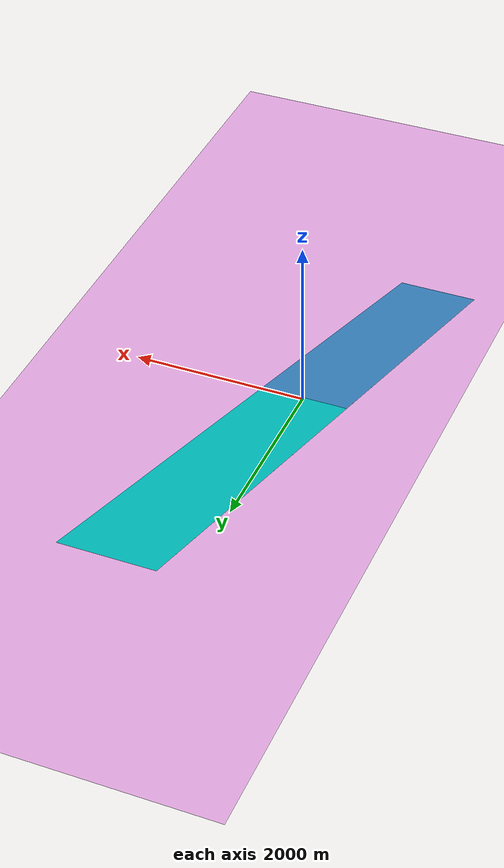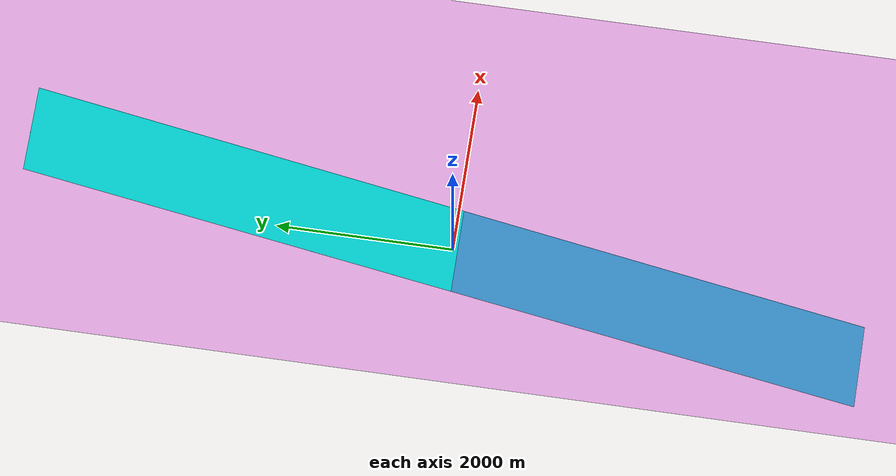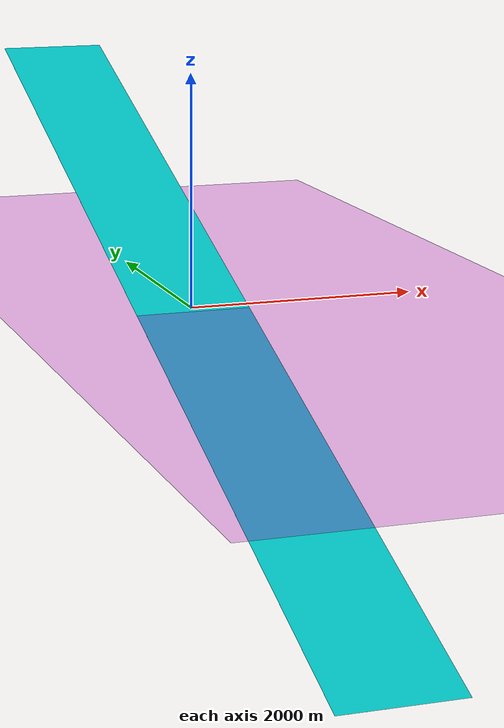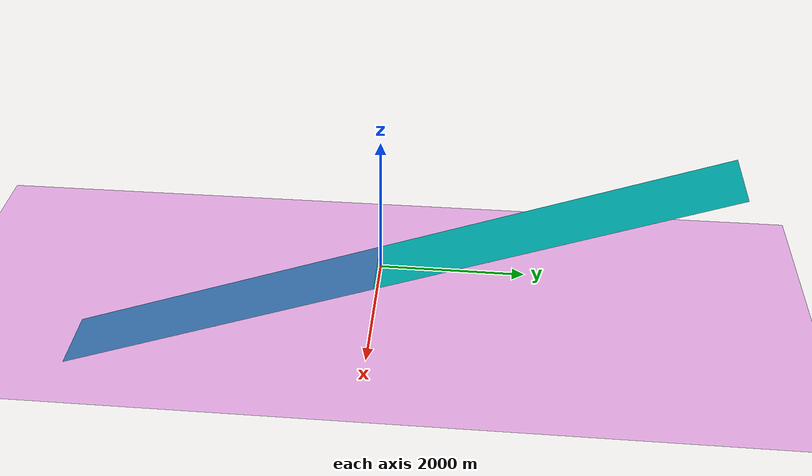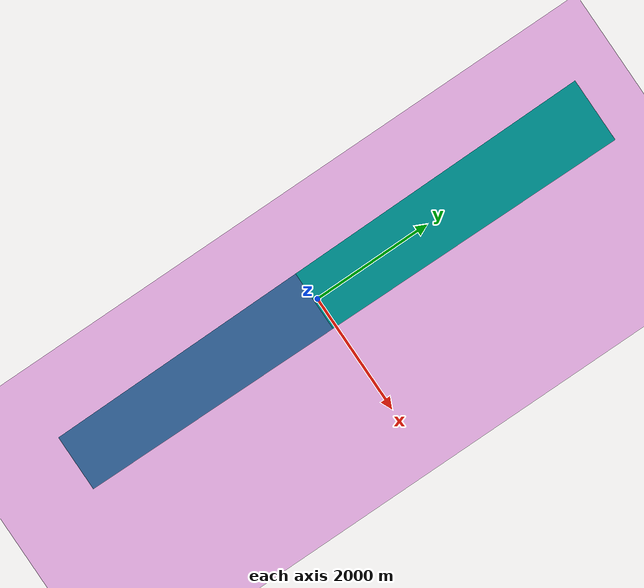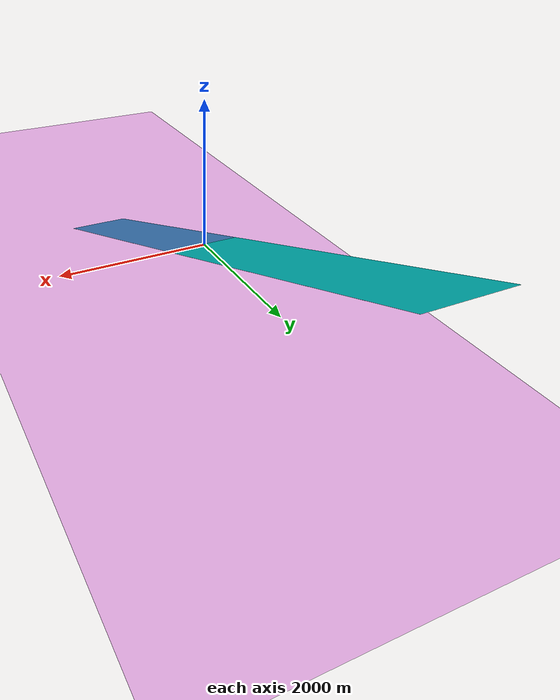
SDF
<?xml version="1.0" ?>
<sdf version="1.6">
  <world name="shapes">
    <physics name="1ms" type="ignored">
      <max_step_size>0.001</max_step_size>
      <real_time_factor>1.0</real_time_factor>
    </physics>
    <plugin
      filename="ignition-gazebo-physics-system"
      name="ignition::gazebo::systems::Physics">
    </plugin>
    <plugin
      filename="ignition-gazebo-user-commands-system"
      name="ignition::gazebo::systems::UserCommands">
    </plugin>
    <plugin
      filename="ignition-gazebo-scene-broadcaster-system"
      name="ignition::gazebo::systems::SceneBroadcaster">
    </plugin>

    <scene>
      <ambient>1.0 1.0 1.0</ambient>
      <background>0.8 0.8 0.8</background>
    </scene>

    <light type="directional" name="sun">
      <cast_shadows>true</cast_shadows>
      <pose>0 0 10 0 0 0</pose>
      <diffuse>0.8 0.8 0.8 1</diffuse>
      <specular>0.8 0.8 0.8 1</specular>
      <attenuation>
        <range>1000</range>
        <constant>0.9</constant>
        <linear>0.01</linear>
        <quadratic>0.001</quadratic>
      </attenuation>
      <direction>-0.5 0.1 -0.9</direction>
    </light>

    <model name="tilted_box_fixed">
      <pose>0 0 0 0.35 0 0</pose>
      <static>true</static>
      <link name="tilted_box_link">
        <collision name="collision">
	  <geometry>
            <box>
              <size>1000 1000 0.1</size>
            </box>
          </geometry>
        </collision>
        <visual name="visual">
	  <geometry>
            <box>
              <size>1000 10000 0.1</size>
            </box>
	  </geometry>
          <material>
            <ambient>0. 0.8 0.8 1</ambient>
            <diffuse>0. 0.8 0.8 1</diffuse>
            <specular>0. 0.8 0.8 1</specular>
          </material>
        </visual>
      </link>
    </model>

    <model name="ground_plane">
      <pose>0 0 -10 0 0 0</pose>
      <static>true</static>
      <link name="ground_plane_link">
        <collision name="collision">
          <geometry>
            <plane>
              <normal>0 0 1</normal>
            </plane>
          </geometry>
        </collision>
        <visual name="visual">
          <geometry>
            <plane>
              <normal>0 0 1</normal>
              <size>10000 10000</size>
            </plane>
          </geometry>
          <material>
            <ambient>0.8 0. 0.8 1</ambient>
            <diffuse>0.8 0. 0.8 1</diffuse>
            <specular>0.8 0. 0.8 1</specular>
          </material>
        </visual>
      </link>
    </model>

    <model name="box">
      <pose>0 0 5 0 0 0</pose>
      <link name="box_link">
        <inertial>
          <inertia>
            <ixx>1</ixx>
            <ixy>0</ixy>
            <ixz>0</ixz>
            <iyy>1</iyy>
            <iyz>0</iyz>
            <izz>1</izz>
          </inertia>
          <mass>1.0</mass>
        </inertial>
        <collision name="box_collision">
          <geometry>
            <box>
              <size>1 1 1</size>
            </box>
          </geometry>
          <surface>
              <friction>
                  <ode>
                      <mu>0.5</mu>
                      <mu2>1</mu2>
                      <slip1>0.00062</slip1>
                      <slip2>0</slip2>
                      <fdir1>0 0 1</fdir1>
                  </ode>
              </friction>
          </surface>
        </collision>

        <visual name="box_visual">
          <geometry>
            <box>
              <size>1 1 1</size>
            </box>
          </geometry>
          <material>
            <ambient>1 0 0 1</ambient>
            <diffuse>1 0 0 1</diffuse>
            <specular>1 0 0 1</specular>
          </material>
        </visual>
      </link>
    </model>

    <model name="box1">
      <pose>3 0 5 0 0.78 0</pose>
      <link name="box_link">
        <inertial>
          <inertia>
            <ixx>1</ixx>
            <ixy>0</ixy>
            <ixz>0</ixz>
            <iyy>1</iyy>
            <iyz>0</iyz>
            <izz>1</izz>
          </inertia>
          <mass>1.0</mass>
        </inertial>
        <collision name="box_collision">
          <geometry>
            <box>
              <size>1 1 1</size>
            </box>
          </geometry>
          <surface>
              <friction>
                  <ode>
                      <mu>0.5</mu>
                      <mu2>1</mu2>
                      <slip1>0.00062</slip1>
                      <slip2>0</slip2>
                      <fdir1>0 0 1</fdir1>
                  </ode>
              </friction>
          </surface>
        </collision>

        <visual name="box_visual">
          <geometry>
            <box>
              <size>1 1 1</size>
            </box>
          </geometry>
          <material>
            <ambient>1 0 0 1</ambient>
            <diffuse>1 0 0 1</diffuse>
            <specular>1 0 0 1</specular>
          </material>
        </visual>
      </link>
    </model>

    <model name="box2">
      <pose>-3 0 5 0.78 0 0</pose>
      <link name="box_link">
        <inertial>
          <inertia>
            <ixx>1</ixx>
            <ixy>0</ixy>
            <ixz>0</ixz>
            <iyy>1</iyy>
            <iyz>0</iyz>
            <izz>1</izz>
          </inertia>
          <mass>1.0</mass>
        </inertial>
        <collision name="box_collision">
          <geometry>
            <box>
              <size>1 1 1</size>
            </box>
          </geometry>
          <surface>
              <friction>
                  <ode>
                      <mu>0.5</mu>
                      <mu2>1</mu2>
                      <slip1>0.00062</slip1>
                      <slip2>0</slip2>
                      <fdir1>0 0 1</fdir1>
                  </ode>
              </friction>
          </surface>
        </collision>

        <visual name="box_visual">
          <geometry>
            <box>
              <size>1 1 1</size>
            </box>
          </geometry>
          <material>
            <ambient>1 0 0 1</ambient>
            <diffuse>1 0 0 1</diffuse>
            <specular>1 0 0 1</specular>
          </material>
        </visual>
      </link>
    </model>

    <model name="box3">
      <pose>-4.5 0 5 0 0 0.78</pose>
      <link name="box_link">
        <inertial>
          <inertia>
            <ixx>1</ixx>
            <ixy>0</ixy>
            <ixz>0</ixz>
            <iyy>1</iyy>
            <iyz>0</iyz>
            <izz>1</izz>
          </inertia>
          <mass>1.0</mass>
        </inertial>
        <collision name="box_collision">
          <geometry>
            <box>
              <size>1 1 1</size>
            </box>
          </geometry>
          <surface>
              <friction>
                  <ode>
                      <mu>0.5</mu>
                      <mu2>1</mu2>
                      <slip1>0.00062</slip1>
                      <slip2>0</slip2>
                      <fdir1>0 0 1</fdir1>
                  </ode>
              </friction>
          </surface>
        </collision>

        <visual name="box_visual">
          <geometry>
            <box>
              <size>1 1 1</size>
            </box>
          </geometry>
          <material>
            <ambient>1 0 0 1</ambient>
            <diffuse>1 0 0 1</diffuse>
            <specular>1 0 0 1</specular>
          </material>
        </visual>
      </link>
    </model>

    <model name="box4">
      <pose>4.5 0 5 0 0 -0.78</pose>
      <link name="box_link">
        <inertial>
          <inertia>
            <ixx>1</ixx>
            <ixy>0</ixy>
            <ixz>0</ixz>
            <iyy>1</iyy>
            <iyz>0</iyz>
            <izz>1</izz>
          </inertia>
          <mass>1.0</mass>
        </inertial>
        <collision name="box_collision">
          <geometry>
            <box>
              <size>1 1 1</size>
            </box>
          </geometry>
          <surface>
              <friction>
                  <ode>
                      <mu>0.5</mu>
                      <mu2>1</mu2>
                      <slip1>0.00062</slip1>
                      <slip2>0</slip2>
                      <fdir1>0 0 1</fdir1>
                  </ode>
              </friction>
          </surface>
        </collision>

        <visual name="box_visual">
          <geometry>
            <box>
              <size>1 1 1</size>
            </box>
          </geometry>
          <material>
            <ambient>1 0 0 1</ambient>
            <diffuse>1 0 0 1</diffuse>
            <specular>1 0 0 1</specular>
          </material>
        </visual>
      </link>
    </model>

    <model name="cylinder">
      <pose>-1.5 0 5 0 0 0</pose>
      <link name="cylinder_link">
        <inertial>
          <inertia>
            <ixx>2</ixx>
            <ixy>0</ixy>
            <ixz>0</ixz>
            <iyy>2</iyy>
            <iyz>0</iyz>
            <izz>2</izz>
          </inertia>
          <mass>2.0</mass>
        </inertial>
        <collision name="cylinder_collision">
          <geometry>
            <cylinder>
              <radius>0.5</radius>
              <length>1.0</length>
            </cylinder>
          </geometry>
	  <surface>
              <friction>
                  <ode>
                      <mu>0.5</mu>
                      <mu2>1</mu2>
                      <slip1>0.00062</slip1>
                      <slip2>0</slip2>
                      <fdir1>0 0 1</fdir1>
                  </ode>
              </friction>
          </surface>
        </collision>

        <visual name="cylinder_visual">
          <geometry>
            <cylinder>
              <radius>0.5</radius>
              <length>1.0</length>
            </cylinder>
          </geometry>
          <material>
            <ambient>0 1 0 1</ambient>
            <diffuse>0 1 0 1</diffuse>
            <specular>0 1 0 1</specular>
          </material>
        </visual>
      </link>
    </model>

    <model name="cylinder2">
      <pose>-6 0 5 0.78 0 0</pose>
      <link name="cylinder_link">
        <inertial>
          <inertia>
            <ixx>2</ixx>
            <ixy>0</ixy>
            <ixz>0</ixz>
            <iyy>2</iyy>
            <iyz>0</iyz>
            <izz>2</izz>
          </inertia>
          <mass>2.0</mass>
        </inertial>
        <collision name="cylinder_collision">
          <geometry>
            <cylinder>
              <radius>0.5</radius>
              <length>1.0</length>
            </cylinder>
          </geometry>
	  <surface>
              <friction>
                  <ode>
                      <mu>0.5</mu>
                      <mu2>1</mu2>
                      <slip1>0.00062</slip1>
                      <slip2>0</slip2>
                      <fdir1>0 0 1</fdir1>
                  </ode>
              </friction>
          </surface>
        </collision>

        <visual name="cylinder_visual">
          <geometry>
            <cylinder>
              <radius>0.5</radius>
              <length>1.0</length>
            </cylinder>
          </geometry>
          <material>
            <ambient>0 1 0 1</ambient>
            <diffuse>0 1 0 1</diffuse>
            <specular>0 1 0 1</specular>
          </material>
        </visual>
      </link>
    </model>

    <model name="cylinder3">
      <pose>6 0 5 0 0.78 0</pose>
      <link name="cylinder_link">
        <inertial>
          <inertia>
            <ixx>2</ixx>
            <ixy>0</ixy>
            <ixz>0</ixz>
            <iyy>2</iyy>
            <iyz>0</iyz>
            <izz>2</izz>
          </inertia>
          <mass>2.0</mass>
        </inertial>
        <collision name="cylinder_collision">
          <geometry>
            <cylinder>
              <radius>0.5</radius>
              <length>1.0</length>
            </cylinder>
          </geometry>
	  <surface>
              <friction>
                  <ode>
                      <mu>0.5</mu>
                      <mu2>1</mu2>
                      <slip1>0.00062</slip1>
                      <slip2>0</slip2>
                      <fdir1>0 0 1</fdir1>
                  </ode>
              </friction>
          </surface>
        </collision>

        <visual name="cylinder_visual">
          <geometry>
            <cylinder>
              <radius>0.5</radius>
              <length>1.0</length>
            </cylinder>
          </geometry>
          <material>
            <ambient>0 1 0 1</ambient>
            <diffuse>0 1 0 1</diffuse>
            <specular>0 1 0 1</specular>
          </material>
        </visual>
      </link>
    </model>

    <model name="cylinder4">
      <pose>-7.5 0 5 1.58 0 1.58</pose>
      <link name="cylinder_link">
        <inertial>
          <inertia>
            <ixx>2</ixx>
            <ixy>0</ixy>
            <ixz>0</ixz>
            <iyy>2</iyy>
            <iyz>0</iyz>
            <izz>2</izz>
          </inertia>
          <mass>2.0</mass>
        </inertial>
        <collision name="cylinder_collision">
          <geometry>
            <cylinder>
              <radius>0.5</radius>
              <length>1.0</length>
            </cylinder>
          </geometry>
	  <surface>
              <friction>
                  <ode>
                      <mu>0.5</mu>
                      <mu2>1</mu2>
                      <slip1>0.00062</slip1>
                      <slip2>0</slip2>
                      <fdir1>0 0 1</fdir1>
                  </ode>
              </friction>
          </surface>
        </collision>

        <visual name="cylinder_visual">
          <geometry>
            <cylinder>
              <radius>0.5</radius>
              <length>1.0</length>
            </cylinder>
          </geometry>
          <material>
            <ambient>0 1 0 1</ambient>
            <diffuse>0 1 0 1</diffuse>
            <specular>0 1 0 1</specular>
          </material>
        </visual>
      </link>
    </model>

    <model name="cylinder5">
      <pose>7.5 0 5 0 1.58 1.58</pose>
      <link name="cylinder_link">
        <inertial>
          <inertia>
            <ixx>2</ixx>
            <ixy>0</ixy>
            <ixz>0</ixz>
            <iyy>2</iyy>
            <iyz>0</iyz>
            <izz>2</izz>
          </inertia>
          <mass>2.0</mass>
        </inertial>
        <collision name="cylinder_collision">
          <geometry>
            <cylinder>
              <radius>0.5</radius>
              <length>1.0</length>
            </cylinder>
          </geometry>
	  <surface>
              <friction>
                  <ode>
                      <mu>0.5</mu>
                      <mu2>1</mu2>
                      <slip1>0.00062</slip1>
                      <slip2>0</slip2>
                      <fdir1>0 0 1</fdir1>
                  </ode>
              </friction>
          </surface>
        </collision>

        <visual name="cylinder_visual">
          <geometry>
            <cylinder>
              <radius>0.5</radius>
              <length>1.0</length>
            </cylinder>
          </geometry>
          <material>
            <ambient>0 1 0 1</ambient>
            <diffuse>0 1 0 1</diffuse>
            <specular>0 1 0 1</specular>
          </material>
        </visual>
      </link>
    </model>

    <model name="sphere">
      <pose>1.5 0 5 0 0 0</pose>
      <link name="sphere_link">
        <inertial>
          <inertia>
            <ixx>3</ixx>
            <ixy>0</ixy>
            <ixz>0</ixz>
            <iyy>3</iyy>
            <iyz>0</iyz>
            <izz>3</izz>
          </inertia>
          <mass>3.0</mass>
        </inertial>
        <collision name="sphere_collision">
          <geometry>
            <sphere>
              <radius>0.5</radius>
            </sphere>
          </geometry>
	  <surface>
              <friction>
                  <ode>
                      <mu>0.5</mu>
                      <mu2>1</mu2>
                      <slip1>0.00062</slip1>
                      <slip2>0</slip2>
                      <fdir1>0 0 1</fdir1>
                  </ode>
              </friction>
          </surface>
        </collision>

        <visual name="sphere_visual">
          <geometry>
            <sphere>
              <radius>0.5</radius>
            </sphere>
          </geometry>
          <material>
            <ambient>0 0 1 1</ambient>
            <diffuse>0 0 1 1</diffuse>
            <specular>0 0 1 1</specular>
          </material>
        </visual>
      </link>
    </model>

  </world>
</sdf>
